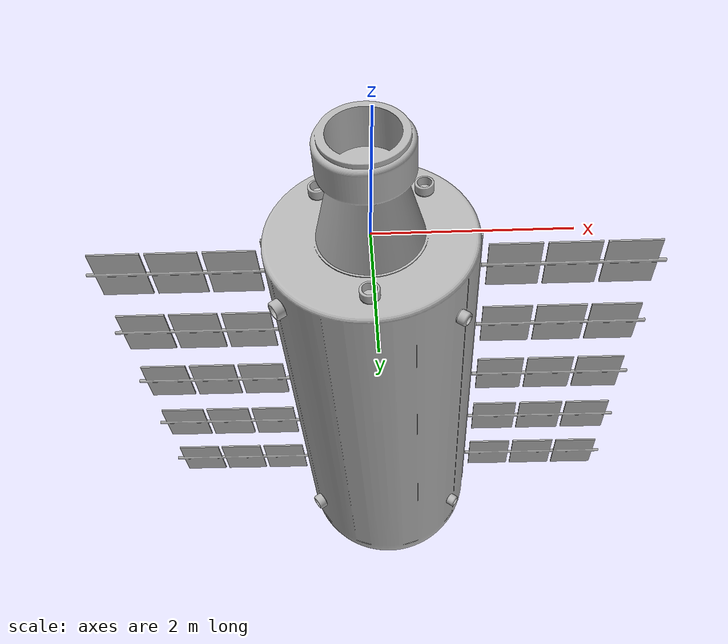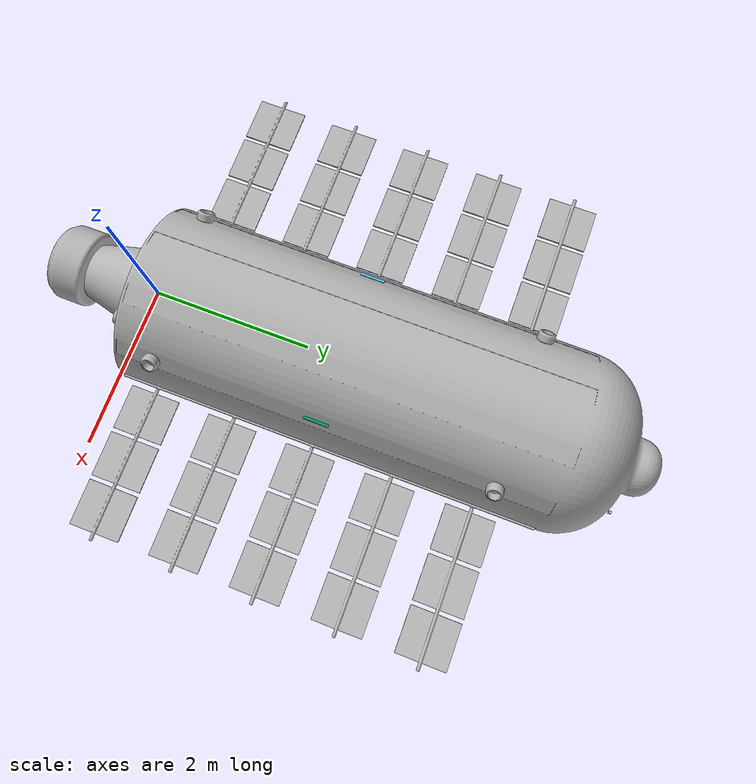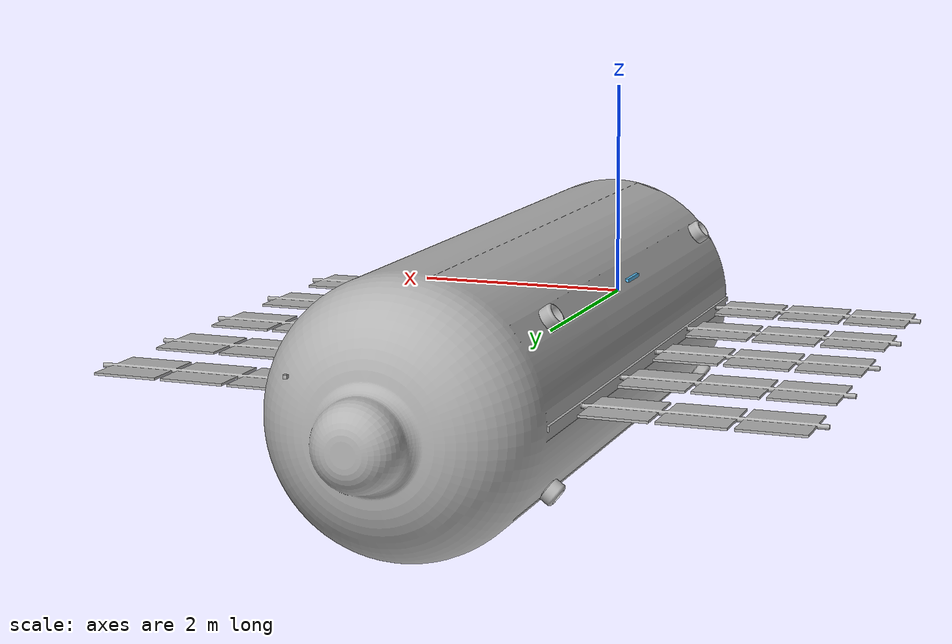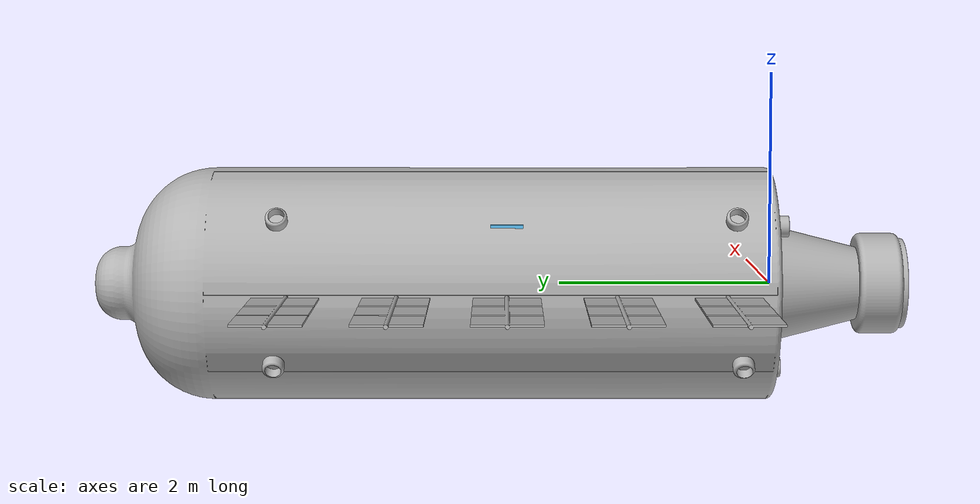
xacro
<?xml version="1.0" ?>
<robot name="ssos_new" xmlns:xacro="http://www.ros.org/wiki/xacro">

<xacro:include filename="$(find ssos_new_description)/urdf/materials.xacro" />
<xacro:include filename="$(find ssos_new_description)/urdf/ssos_new.trans" />
<xacro:include filename="$(find ssos_new_description)/urdf/ssos_new.gazebo" />
<link name="base_link">
  <inertial>
    <origin xyz="1.886367117564357e-05 2.9300904056450165 -3.512754882887134e-05" rpy="0 0 0"/>
    <mass value="59820.904316015636"/>
    <inertia ixx="190022.980799" iyy="35229.544646" izz="190060.931055" ixy="2.422747" iyz="-5.513361" ixz="0.041035"/>
  </inertial>
  <visual>
    <origin xyz="0 0 0" rpy="0 0 0"/>
    <geometry>
      <mesh filename="file://$(find ssos_new_description)/meshes/base_link.stl" scale="0.001 0.001 0.001"/>
    </geometry>
    <material name="silver"/>
  </visual>
  <collision>
    <origin xyz="0 0 0" rpy="0 0 0"/>
    <geometry>
      <mesh filename="file://$(find ssos_new_description)/meshes/base_link.stl" scale="0.001 0.001 0.001"/>
    </geometry>
  </collision>
</link>

<link name="MT_2_1">
  <inertial>
    <origin xyz="-2.841007504805759e-07 -0.0495376300873707 1.1864439974917929e-07" rpy="0 0 0"/>
    <mass value="3.7162511033865258"/>
    <inertia ixx="0.017529" iyy="0.02897" izz="0.017529" ixy="0.0" iyz="-0.0" ixz="-0.0"/>
  </inertial>
  <visual>
    <origin xyz="-0.551703 0.01 -0.598446" rpy="0 0 0"/>
    <geometry>
      <mesh filename="file://$(find ssos_new_description)/meshes/MT_2_1.stl" scale="0.001 0.001 0.001"/>
    </geometry>
    <material name="silver"/>
  </visual>
  <collision>
    <origin xyz="-0.551703 0.01 -0.598446" rpy="0 0 0"/>
    <geometry>
      <mesh filename="file://$(find ssos_new_description)/meshes/MT_2_1.stl" scale="0.001 0.001 0.001"/>
    </geometry>
  </collision>
</link>

<link name="MT_1_1">
  <inertial>
    <origin xyz="-1.3771435936060783e-07 -0.0495376300873707 -4.6078387594405967e-07" rpy="0 0 0"/>
    <mass value="3.7162511033865258"/>
    <inertia ixx="0.017529" iyy="0.02897" izz="0.017529" ixy="-0.0" iyz="0.0" ixz="0.0"/>
  </inertial>
  <visual>
    <origin xyz="0.550421 0.01 -0.594304" rpy="0 0 0"/>
    <geometry>
      <mesh filename="file://$(find ssos_new_description)/meshes/MT_1_1.stl" scale="0.001 0.001 0.001"/>
    </geometry>
    <material name="silver"/>
  </visual>
  <collision>
    <origin xyz="0.550421 0.01 -0.594304" rpy="0 0 0"/>
    <geometry>
      <mesh filename="file://$(find ssos_new_description)/meshes/MT_1_1.stl" scale="0.001 0.001 0.001"/>
    </geometry>
  </collision>
</link>

<link name="MT_3_1">
  <inertial>
    <origin xyz="-1.1808064770261507e-07 -0.049537630087370985 -4.6108205664641133e-07" rpy="0 0 0"/>
    <mass value="3.7162511033865173"/>
    <inertia ixx="0.017529" iyy="0.02897" izz="0.017529" ixy="-0.0" iyz="0.0" ixz="0.0"/>
  </inertial>
  <visual>
    <origin xyz="-0.000773 0.01 0.803127" rpy="0 0 0"/>
    <geometry>
      <mesh filename="file://$(find ssos_new_description)/meshes/MT_3_1.stl" scale="0.001 0.001 0.001"/>
    </geometry>
    <material name="silver"/>
  </visual>
  <collision>
    <origin xyz="-0.000773 0.01 0.803127" rpy="0 0 0"/>
    <geometry>
      <mesh filename="file://$(find ssos_new_description)/meshes/MT_3_1.stl" scale="0.001 0.001 0.001"/>
    </geometry>
  </collision>
</link>

<link name="docking_port_1">
  <inertial>
    <origin xyz="0.0 -0.4851995656397463 7.105427357601002e-17" rpy="0 0 0"/>
    <mass value="5122.6114498737425"/>
    <inertia ixx="926.238737" iyy="624.648368" izz="926.238737" ixy="0.0" iyz="0.0" ixz="0.0"/>
  </inertial>
  <visual>
    <origin xyz="-0.0 0.01 -0.0" rpy="0 0 0"/>
    <geometry>
      <mesh filename="file://$(find ssos_new_description)/meshes/docking_port_1.stl" scale="0.001 0.001 0.001"/>
    </geometry>
    <material name="silver"/>
  </visual>
  <collision>
    <origin xyz="-0.0 0.01 -0.0" rpy="0 0 0"/>
    <geometry>
      <mesh filename="file://$(find ssos_new_description)/meshes/docking_port_1.stl" scale="0.001 0.001 0.001"/>
    </geometry>
  </collision>
</link>

<link name="RTTB_1">
  <inertial>
    <origin xyz="0.03824995618750615 3.4416913763379853e-15 0.027790336313582742" rpy="0 0 0"/>
    <mass value="3.5350193044108953"/>
    <inertia ixx="0.023559" iyy="0.016352" izz="0.020156" ixy="0.0" iyz="0.0" ixz="0.005237"/>
  </inertial>
  <visual>
    <origin xyz="-0.904613 -0.5 -0.626338" rpy="0 0 0"/>
    <geometry>
      <mesh filename="file://$(find ssos_new_description)/meshes/RTTB_1.stl" scale="0.001 0.001 0.001"/>
    </geometry>
    <material name="silver"/>
  </visual>
  <collision>
    <origin xyz="-0.904613 -0.5 -0.626338" rpy="0 0 0"/>
    <geometry>
      <mesh filename="file://$(find ssos_new_description)/meshes/RTTB_1.stl" scale="0.001 0.001 0.001"/>
    </geometry>
  </collision>
</link>

<link name="RTTF_1">
  <inertial>
    <origin xyz="0.03824995618750304 0.0 0.02779033631358163" rpy="0 0 0"/>
    <mass value="3.53501930441091"/>
    <inertia ixx="0.023559" iyy="0.016352" izz="0.020156" ixy="-0.0" iyz="0.0" ixz="0.005237"/>
  </inertial>
  <visual>
    <origin xyz="-0.904613 -4.6 -0.626338" rpy="0 0 0"/>
    <geometry>
      <mesh filename="file://$(find ssos_new_description)/meshes/RTTF_1.stl" scale="0.001 0.001 0.001"/>
    </geometry>
    <material name="silver"/>
  </visual>
  <collision>
    <origin xyz="-0.904613 -4.6 -0.626338" rpy="0 0 0"/>
    <geometry>
      <mesh filename="file://$(find ssos_new_description)/meshes/RTTF_1.stl" scale="0.001 0.001 0.001"/>
    </geometry>
  </collision>
</link>

<link name="RBTF_1">
  <inertial>
    <origin xyz="0.03991016766178146 -0.0005714963848992838 -0.02468915670161853" rpy="0 0 0"/>
    <mass value="4.659361362870616"/>
    <inertia ixx="0.018793" iyy="0.014025" izz="0.016566" ixy="-1e-05" iyz="-1.1e-05" ixz="-0.003391"/>
  </inertial>
  <visual>
    <origin xyz="-0.874052 -4.600327 0.668403" rpy="0 0 0"/>
    <geometry>
      <mesh filename="file://$(find ssos_new_description)/meshes/RBTF_1.stl" scale="0.001 0.001 0.001"/>
    </geometry>
    <material name="silver"/>
  </visual>
  <collision>
    <origin xyz="-0.874052 -4.600327 0.668403" rpy="0 0 0"/>
    <geometry>
      <mesh filename="file://$(find ssos_new_description)/meshes/RBTF_1.stl" scale="0.001 0.001 0.001"/>
    </geometry>
  </collision>
</link>

<link name="RBTB_1">
  <inertial>
    <origin xyz="0.03984184050268691 3.627816314022425e-08 -0.025461070512632022" rpy="0 0 0"/>
    <mass value="7.24763069715076"/>
    <inertia ixx="0.025794" iyy="0.019865" izz="0.023137" ixy="-0.0" iyz="0.0" ixz="-0.004274"/>
  </inertial>
  <visual>
    <origin xyz="-0.873275 -0.5 0.669472" rpy="0 0 0"/>
    <geometry>
      <mesh filename="file://$(find ssos_new_description)/meshes/RBTB_1.stl" scale="0.001 0.001 0.001"/>
    </geometry>
    <material name="silver"/>
  </visual>
  <collision>
    <origin xyz="-0.873275 -0.5 0.669472" rpy="0 0 0"/>
    <geometry>
      <mesh filename="file://$(find ssos_new_description)/meshes/RBTB_1.stl" scale="0.001 0.001 0.001"/>
    </geometry>
  </collision>
</link>

<link name="LTTB_1">
  <inertial>
    <origin xyz="-0.03824969357288299 6.772360450213455e-15 0.027790186032330966" rpy="0 0 0"/>
    <mass value="10.164799098763918"/>
    <inertia ixx="0.067744" iyy="0.047019" izz="0.057959" ixy="-0.0" iyz="0.0" ixz="-0.015057"/>
  </inertial>
  <visual>
    <origin xyz="0.875224 -0.4 -0.666789" rpy="0 0 0"/>
    <geometry>
      <mesh filename="file://$(find ssos_new_description)/meshes/LTTB_1.stl" scale="0.001 0.001 0.001"/>
    </geometry>
    <material name="silver"/>
  </visual>
  <collision>
    <origin xyz="0.875224 -0.4 -0.666789" rpy="0 0 0"/>
    <geometry>
      <mesh filename="file://$(find ssos_new_description)/meshes/LTTB_1.stl" scale="0.001 0.001 0.001"/>
    </geometry>
  </collision>
</link>

<link name="LTTF_1">
  <inertial>
    <origin xyz="-0.042338695723278086 0.0032245412137728025 0.02216428331774034" rpy="0 0 0"/>
    <mass value="10.165044701049645"/>
    <inertia ixx="0.067394" iyy="0.046737" izz="0.057906" ixy="-3.6e-05" iyz="-0.000136" ixz="-0.014957"/>
  </inertial>
  <visual>
    <origin xyz="0.873495 -4.598636 -0.669169" rpy="0 0 0"/>
    <geometry>
      <mesh filename="file://$(find ssos_new_description)/meshes/LTTF_1.stl" scale="0.001 0.001 0.001"/>
    </geometry>
    <material name="silver"/>
  </visual>
  <collision>
    <origin xyz="0.873495 -4.598636 -0.669169" rpy="0 0 0"/>
    <geometry>
      <mesh filename="file://$(find ssos_new_description)/meshes/LTTF_1.stl" scale="0.001 0.001 0.001"/>
    </geometry>
  </collision>
</link>

<link name="LBTB_1">
  <inertial>
    <origin xyz="-0.04313953774063117 0.008517774894352126 -0.021091057455870144" rpy="0 0 0"/>
    <mass value="10.16843748111071"/>
    <inertia ixx="0.065483" iyy="0.045826" izz="0.056489" ixy="-0.000547" iyz="0.001135" ixz="0.014548"/>
  </inertial>
  <visual>
    <origin xyz="0.895806 -0.331656 0.638461" rpy="0 0 0"/>
    <geometry>
      <mesh filename="file://$(find ssos_new_description)/meshes/LBTB_1.stl" scale="0.001 0.001 0.001"/>
    </geometry>
    <material name="silver"/>
  </visual>
  <collision>
    <origin xyz="0.895806 -0.331656 0.638461" rpy="0 0 0"/>
    <geometry>
      <mesh filename="file://$(find ssos_new_description)/meshes/LBTB_1.stl" scale="0.001 0.001 0.001"/>
    </geometry>
  </collision>
</link>

<link name="LBTF_1">
  <inertial>
    <origin xyz="-0.03824959236897019 3.481451216202913e-07 -0.027789808983213926" rpy="0 0 0"/>
    <mass value="10.16479909876385"/>
    <inertia ixx="0.067744" iyy="0.047019" izz="0.057959" ixy="0.0" iyz="-0.0" ixz="0.015057"/>
  </inertial>
  <visual>
    <origin xyz="0.899387 -4.637913 0.633532" rpy="0 0 0"/>
    <geometry>
      <mesh filename="file://$(find ssos_new_description)/meshes/LBTF_1.stl" scale="0.001 0.001 0.001"/>
    </geometry>
    <material name="silver"/>
  </visual>
  <collision>
    <origin xyz="0.899387 -4.637913 0.633532" rpy="0 0 0"/>
    <geometry>
      <mesh filename="file://$(find ssos_new_description)/meshes/LBTF_1.stl" scale="0.001 0.001 0.001"/>
    </geometry>
  </collision>
</link>

<link name="R_panel_1_1">
  <inertial>
    <origin xyz="0.9361275572401446 3.845611862285381e-07 -0.0019851982249817" rpy="0 0 0"/>
    <mass value="167.22718079856097"/>
    <inertia ixx="4.989471" iyy="45.021836" izz="49.997477" ixy="-0.0" iyz="-0.0" ixz="-0.000584"/>
  </inertial>
  <visual>
    <origin xyz="-1.125 -0.500262 -0.002319" rpy="0 0 0"/>
    <geometry>
      <mesh filename="file://$(find ssos_new_description)/meshes/R_panel_1_1.stl" scale="0.001 0.001 0.001"/>
    </geometry>
    <material name="silver"/>
  </visual>
  <collision>
    <origin xyz="-1.125 -0.500262 -0.002319" rpy="0 0 0"/>
    <geometry>
      <mesh filename="file://$(find ssos_new_description)/meshes/R_panel_1_1.stl" scale="0.001 0.001 0.001"/>
    </geometry>
  </collision>
</link>

<link name="R_panel_2_1">
  <inertial>
    <origin xyz="0.9361275572401451 3.845611862285381e-07 -0.001985198224981703" rpy="0 0 0"/>
    <mass value="167.22718079856094"/>
    <inertia ixx="4.989471" iyy="45.021836" izz="49.997477" ixy="-0.0" iyz="0.0" ixz="-0.000584"/>
  </inertial>
  <visual>
    <origin xyz="-1.125 -1.500262 -0.002319" rpy="0 0 0"/>
    <geometry>
      <mesh filename="file://$(find ssos_new_description)/meshes/R_panel_2_1.stl" scale="0.001 0.001 0.001"/>
    </geometry>
    <material name="silver"/>
  </visual>
  <collision>
    <origin xyz="-1.125 -1.500262 -0.002319" rpy="0 0 0"/>
    <geometry>
      <mesh filename="file://$(find ssos_new_description)/meshes/R_panel_2_1.stl" scale="0.001 0.001 0.001"/>
    </geometry>
  </collision>
</link>

<link name="R_panel_3_1">
  <inertial>
    <origin xyz="0.9361275572401451 3.8456118600649347e-07 -0.001985198224981703" rpy="0 0 0"/>
    <mass value="167.22718079856094"/>
    <inertia ixx="4.989471" iyy="45.021836" izz="49.997477" ixy="0.0" iyz="0.0" ixz="-0.000584"/>
  </inertial>
  <visual>
    <origin xyz="-1.125 -2.500262 -0.002319" rpy="0 0 0"/>
    <geometry>
      <mesh filename="file://$(find ssos_new_description)/meshes/R_panel_3_1.stl" scale="0.001 0.001 0.001"/>
    </geometry>
    <material name="silver"/>
  </visual>
  <collision>
    <origin xyz="-1.125 -2.500262 -0.002319" rpy="0 0 0"/>
    <geometry>
      <mesh filename="file://$(find ssos_new_description)/meshes/R_panel_3_1.stl" scale="0.001 0.001 0.001"/>
    </geometry>
  </collision>
</link>

<link name="R_panel_4_1">
  <inertial>
    <origin xyz="0.9361275572401442 3.8456118600649347e-07 -0.001985198224981707" rpy="0 0 0"/>
    <mass value="167.227180798561"/>
    <inertia ixx="4.989471" iyy="45.021836" izz="49.997477" ixy="0.0" iyz="0.0" ixz="-0.000584"/>
  </inertial>
  <visual>
    <origin xyz="-1.125 -3.500262 -0.002319" rpy="0 0 0"/>
    <geometry>
      <mesh filename="file://$(find ssos_new_description)/meshes/R_panel_4_1.stl" scale="0.001 0.001 0.001"/>
    </geometry>
    <material name="silver"/>
  </visual>
  <collision>
    <origin xyz="-1.125 -3.500262 -0.002319" rpy="0 0 0"/>
    <geometry>
      <mesh filename="file://$(find ssos_new_description)/meshes/R_panel_4_1.stl" scale="0.001 0.001 0.001"/>
    </geometry>
  </collision>
</link>

<link name="R_panel_5_1">
  <inertial>
    <origin xyz="0.9361275572401442 3.845611873387611e-07 -0.001985198224981707" rpy="0 0 0"/>
    <mass value="167.227180798561"/>
    <inertia ixx="4.989471" iyy="45.021836" izz="49.997477" ixy="0.0" iyz="0.0" ixz="-0.000584"/>
  </inertial>
  <visual>
    <origin xyz="-1.125 -4.500262 -0.002319" rpy="0 0 0"/>
    <geometry>
      <mesh filename="file://$(find ssos_new_description)/meshes/R_panel_5_1.stl" scale="0.001 0.001 0.001"/>
    </geometry>
    <material name="silver"/>
  </visual>
  <collision>
    <origin xyz="-1.125 -4.500262 -0.002319" rpy="0 0 0"/>
    <geometry>
      <mesh filename="file://$(find ssos_new_description)/meshes/R_panel_5_1.stl" scale="0.001 0.001 0.001"/>
    </geometry>
  </collision>
</link>

<link name="L_panel_1_1">
  <inertial>
    <origin xyz="-0.9361275572401451 3.845611862285381e-07 -0.0019851982249817" rpy="0 0 0"/>
    <mass value="167.22718079856097"/>
    <inertia ixx="4.989471" iyy="45.021836" izz="49.997477" ixy="-0.0" iyz="0.0" ixz="0.000584"/>
  </inertial>
  <visual>
    <origin xyz="1.125 -0.500262 -0.002319" rpy="0 0 0"/>
    <geometry>
      <mesh filename="file://$(find ssos_new_description)/meshes/L_panel_1_1.stl" scale="0.001 0.001 0.001"/>
    </geometry>
    <material name="silver"/>
  </visual>
  <collision>
    <origin xyz="1.125 -0.500262 -0.002319" rpy="0 0 0"/>
    <geometry>
      <mesh filename="file://$(find ssos_new_description)/meshes/L_panel_1_1.stl" scale="0.001 0.001 0.001"/>
    </geometry>
  </collision>
</link>

<link name="L_panel_2_1">
  <inertial>
    <origin xyz="-0.9361275572401451 3.845611862285381e-07 -0.001985198224981703" rpy="0 0 0"/>
    <mass value="167.22718079856094"/>
    <inertia ixx="4.989471" iyy="45.021836" izz="49.997477" ixy="0.0" iyz="0.0" ixz="0.000584"/>
  </inertial>
  <visual>
    <origin xyz="1.125 -1.500262 -0.002319" rpy="0 0 0"/>
    <geometry>
      <mesh filename="file://$(find ssos_new_description)/meshes/L_panel_2_1.stl" scale="0.001 0.001 0.001"/>
    </geometry>
    <material name="silver"/>
  </visual>
  <collision>
    <origin xyz="1.125 -1.500262 -0.002319" rpy="0 0 0"/>
    <geometry>
      <mesh filename="file://$(find ssos_new_description)/meshes/L_panel_2_1.stl" scale="0.001 0.001 0.001"/>
    </geometry>
  </collision>
</link>

<link name="L_panel_3_1">
  <inertial>
    <origin xyz="-0.9361275572401451 3.8456118600649347e-07 -0.001985198224981703" rpy="0 0 0"/>
    <mass value="167.22718079856094"/>
    <inertia ixx="4.989471" iyy="45.021836" izz="49.997477" ixy="-0.0" iyz="0.0" ixz="0.000584"/>
  </inertial>
  <visual>
    <origin xyz="1.125 -2.500262 -0.002319" rpy="0 0 0"/>
    <geometry>
      <mesh filename="file://$(find ssos_new_description)/meshes/L_panel_3_1.stl" scale="0.001 0.001 0.001"/>
    </geometry>
    <material name="silver"/>
  </visual>
  <collision>
    <origin xyz="1.125 -2.500262 -0.002319" rpy="0 0 0"/>
    <geometry>
      <mesh filename="file://$(find ssos_new_description)/meshes/L_panel_3_1.stl" scale="0.001 0.001 0.001"/>
    </geometry>
  </collision>
</link>

<link name="L_panel_4_1">
  <inertial>
    <origin xyz="-0.9361275572401451 3.8456118600649347e-07 -0.001985198224981707" rpy="0 0 0"/>
    <mass value="167.227180798561"/>
    <inertia ixx="4.989471" iyy="45.021836" izz="49.997477" ixy="-0.0" iyz="0.0" ixz="0.000584"/>
  </inertial>
  <visual>
    <origin xyz="1.125 -3.500262 -0.002319" rpy="0 0 0"/>
    <geometry>
      <mesh filename="file://$(find ssos_new_description)/meshes/L_panel_4_1.stl" scale="0.001 0.001 0.001"/>
    </geometry>
    <material name="silver"/>
  </visual>
  <collision>
    <origin xyz="1.125 -3.500262 -0.002319" rpy="0 0 0"/>
    <geometry>
      <mesh filename="file://$(find ssos_new_description)/meshes/L_panel_4_1.stl" scale="0.001 0.001 0.001"/>
    </geometry>
  </collision>
</link>

<link name="L_panel_5_1">
  <inertial>
    <origin xyz="-0.9361275572401451 3.845611873387611e-07 -0.001985198224981707" rpy="0 0 0"/>
    <mass value="167.227180798561"/>
    <inertia ixx="4.989471" iyy="45.021836" izz="49.997477" ixy="-0.0" iyz="0.0" ixz="0.000584"/>
  </inertial>
  <visual>
    <origin xyz="1.125 -4.500262 -0.002319" rpy="0 0 0"/>
    <geometry>
      <mesh filename="file://$(find ssos_new_description)/meshes/L_panel_5_1.stl" scale="0.001 0.001 0.001"/>
    </geometry>
    <material name="silver"/>
  </visual>
  <collision>
    <origin xyz="1.125 -4.500262 -0.002319" rpy="0 0 0"/>
    <geometry>
      <mesh filename="file://$(find ssos_new_description)/meshes/L_panel_5_1.stl" scale="0.001 0.001 0.001"/>
    </geometry>
  </collision>
</link>

<joint name="bl_th" type="continuous">
  <origin xyz="0.551703 -0.01 0.598446" rpy="0 0 0"/>
  <parent link="base_link"/>
  <child link="MT_2_1"/>
  <axis xyz="0.0 1.0 0.0"/>
</joint>

<joint name="br_th" type="continuous">
  <origin xyz="-0.550421 -0.01 0.594304" rpy="0 0 0"/>
  <parent link="base_link"/>
  <child link="MT_1_1"/>
  <axis xyz="0.0 1.0 0.0"/>
</joint>

<joint name="bb_th" type="continuous">
  <origin xyz="0.000773 -0.01 -0.803127" rpy="0 0 0"/>
  <parent link="base_link"/>
  <child link="MT_3_1"/>
  <axis xyz="0.0 1.0 0.0"/>
</joint>

<joint name="docking" type="continuous">
  <origin xyz="0.0 -0.01 0.0" rpy="0 0 0"/>
  <parent link="base_link"/>
  <child link="docking_port_1"/>
  <axis xyz="0.0 1.0 0.0"/>
</joint>

<joint name="lth_tb" type="continuous">
  <origin xyz="0.904613 0.5 0.626338" rpy="0 0 0"/>
  <parent link="base_link"/>
  <child link="RTTB_1"/>
  <axis xyz="0.809017 0.0 0.587785"/>
</joint>

<joint name="lth_tf" type="continuous">
  <origin xyz="0.904613 4.6 0.626338" rpy="0 0 0"/>
  <parent link="base_link"/>
  <child link="RTTF_1"/>
  <axis xyz="0.809017 0.0 0.587785"/>
</joint>

<joint name="lth_bf" type="continuous">
  <origin xyz="0.874052 4.600327 -0.668403" rpy="0 0 0"/>
  <parent link="base_link"/>
  <child link="RBTF_1"/>
  <axis xyz="0.809017 0.0 -0.587785"/>
</joint>

<joint name="lth_bb" type="continuous">
  <origin xyz="0.873275 0.5 -0.669472" rpy="0 0 0"/>
  <parent link="base_link"/>
  <child link="RBTB_1"/>
  <axis xyz="0.809017 0.0 -0.587785"/>
</joint>

<joint name="rth_tb" type="continuous">
  <origin xyz="-0.875224 0.4 0.666789" rpy="0 0 0"/>
  <parent link="base_link"/>
  <child link="LTTB_1"/>
  <axis xyz="-0.809017 0.0 0.587785"/>
</joint>

<joint name="rth_tf" type="continuous">
  <origin xyz="-0.873495 4.598636 0.669169" rpy="0 0 0"/>
  <parent link="base_link"/>
  <child link="LTTF_1"/>
  <axis xyz="-0.809017 0.0 0.587785"/>
</joint>

<joint name="rth_bb" type="continuous">
  <origin xyz="-0.895806 0.331656 -0.638461" rpy="0 0 0"/>
  <parent link="base_link"/>
  <child link="LBTB_1"/>
  <axis xyz="-0.809017 0.0 -0.587785"/>
</joint>

<joint name="rth_bf" type="continuous">
  <origin xyz="-0.899387 4.637913 -0.633532" rpy="0 0 0"/>
  <parent link="base_link"/>
  <child link="LBTF_1"/>
  <axis xyz="-0.809017 0.0 -0.587785"/>
</joint>

<joint name="lsa_1" type="continuous">
  <origin xyz="1.125 0.500262 0.002319" rpy="0 0 0"/>
  <parent link="base_link"/>
  <child link="R_panel_1_1"/>
  <axis xyz="1.0 0.0 0.0"/>
</joint>

<joint name="lsa_2" type="continuous">
  <origin xyz="1.125 1.500262 0.002319" rpy="0 0 0"/>
  <parent link="base_link"/>
  <child link="R_panel_2_1"/>
  <axis xyz="1.0 0.0 0.0"/>
</joint>

<joint name="lsa_3" type="continuous">
  <origin xyz="1.125 2.500262 0.002319" rpy="0 0 0"/>
  <parent link="base_link"/>
  <child link="R_panel_3_1"/>
  <axis xyz="1.0 0.0 0.0"/>
</joint>

<joint name="lsa_4" type="continuous">
  <origin xyz="1.125 3.500262 0.002319" rpy="0 0 0"/>
  <parent link="base_link"/>
  <child link="R_panel_4_1"/>
  <axis xyz="1.0 0.0 0.0"/>
</joint>

<joint name="lsa_5" type="continuous">
  <origin xyz="1.125 4.500262 0.002319" rpy="0 0 0"/>
  <parent link="base_link"/>
  <child link="R_panel_5_1"/>
  <axis xyz="1.0 0.0 0.0"/>
</joint>

<joint name="rsa_1" type="continuous">
  <origin xyz="-1.125 0.500262 0.002319" rpy="0 0 0"/>
  <parent link="base_link"/>
  <child link="L_panel_1_1"/>
  <axis xyz="-1.0 0.0 0.0"/>
</joint>

<joint name="rsa_2" type="continuous">
  <origin xyz="-1.125 1.500262 0.002319" rpy="0 0 0"/>
  <parent link="base_link"/>
  <child link="L_panel_2_1"/>
  <axis xyz="-1.0 0.0 0.0"/>
</joint>

<joint name="rsa_3" type="continuous">
  <origin xyz="-1.125 2.500262 0.002319" rpy="0 0 0"/>
  <parent link="base_link"/>
  <child link="L_panel_3_1"/>
  <axis xyz="-1.0 0.0 0.0"/>
</joint>

<joint name="rsa_4" type="continuous">
  <origin xyz="-1.125 3.500262 0.002319" rpy="0 0 0"/>
  <parent link="base_link"/>
  <child link="L_panel_4_1"/>
  <axis xyz="-1.0 0.0 0.0"/>
</joint>

<joint name="rsa_5" type="continuous">
  <origin xyz="-1.125 4.500262 0.002319" rpy="0 0 0"/>
  <parent link="base_link"/>
  <child link="L_panel_5_1"/>
  <axis xyz="-1.0 0.0 0.0"/>
</joint>

<!-- Additional cameras, IMU, and GPS -->
<!-- 1. Camera in front of space station -->
<joint type="fixed" name="front_camera_joint">
  <origin xyz="0.673495 5.9 0.4" rpy="0 0 1.57"/>
  <parent link="base_link"/>
  <child link="front_camera_link"/>
</joint>
<link name="front_camera_link">
  <inertial>
    <mass value="0.1"/>
    <origin xyz="0 0 0" rpy="0 0 0"/>
    <inertia ixx="1e-6" iyy="1e-6" izz="1e-6" ixy="0" iyz="0" ixz="0"/>
  </inertial>
  <visual>
    <geometry><box size="0.03 0.03 0.03"/></geometry>
  </visual>
  <collision>
    <geometry><box size="0.03 0.03 0.03"/></geometry>
  </collision>
</link>

<!-- 2. Camera near MT_1_1 -->
<joint type="fixed" name="mt1_camera_joint">
  <origin xyz="0.0 -0.01 0.6" rpy="0 0 -1.57"/>
  <parent link="base_link"/>
  <child link="mt1_camera_link"/>
</joint>
<link name="mt1_camera_link">
  <inertial>
    <mass value="0.1"/>
    <origin xyz="0 0 0" rpy="0 0 0"/>
    <inertia ixx="1e-6" iyy="1e-6" izz="1e-6" ixy="0" iyz="0" ixz="0"/>
  </inertial>
  <visual>
    <geometry><box size="0.03 0.3 0.03"/></geometry>
  </visual>
  <collision>
    <geometry><box size="0.03 0.3 0.03"/></geometry>
  </collision>
</link>

<!-- 3. Camera right of 3rd solar array joint -->
<joint type="fixed" name="solar_r3_camera_joint">
  <origin xyz="-0.904613 2.5 0.626338" rpy="0 0 3.14 "/>
  <parent link="base_link"/>
  <child link="solar_r3_camera_link"/>
</joint>
<link name="solar_r3_camera_link">
  <inertial>
    <mass value="0.1"/>
    <origin xyz="0 0 0" rpy="0 0 0"/>
    <inertia ixx="1e-6" iyy="1e-6" izz="1e-6" ixy="0" iyz="0" ixz="0"/>
  </inertial>
  <visual>
    <geometry><box size="0.03 0.3 0.03"/></geometry>
  </visual>
  <collision>
    <geometry><box size="0.03 0.3 0.03"/></geometry>
  </collision>
</link>

<!-- 4. Camera left of 3rd solar array joint -->
<joint type="fixed" name="solar_l3_camera_joint">
  <origin xyz="0.904613 2.5 0.626338" rpy="0 0 0"/>
  <parent link="base_link"/>
  <child link="solar_l3_camera_link"/>
</joint>
<link name="solar_l3_camera_link">
  <inertial>
    <mass value="0.1"/>
    <origin xyz="0 0 0" rpy="0 0 0"/>
    <inertia ixx="1e-6" iyy="1e-6" izz="1e-6" ixy="0" iyz="0" ixz="0"/>
  </inertial>
  <visual>
    <geometry><box size="0.03 0.3 0.03"/></geometry>
  </visual>
  <collision>
    <geometry><box size="0.03 0.3 0.03"/></geometry>
  </collision>
</link>

<!-- IMU sensor -->
<joint name="imu_joint" type="fixed">
  <origin xyz="0 0 0" rpy="0 0 0"/>
  <parent link="base_link"/>
  <child link="imu_link"/>
</joint>
<link name="imu_link"/>

<!-- GPS sensor -->
<joint name="navsat_joint" type="fixed">
  <origin xyz="0 0 0" rpy="0 0 0"/>
  <parent link="base_link"/>
  <child link="navsat_link"/>
</joint>
<link name="navsat_link"/>

</robot>

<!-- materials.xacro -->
<robot name="ssos_new" xmlns:xacro="http://www.ros.org/wiki/xacro" >

<material name="black">
    <color rgba="0.0 0.0 0.0 1.0"/>
  </material>

  <material name="white">
    <color rgba="1.0 1.0 1.0 1.0"/>
  </material>

  <material name="red">
    <color rgba="0.8 0.0 0.0 1.0"/>
  </material>

  <material name="blue">
    <color rgba="0.0 0.0 0.8 1.0"/>
  </material>

  <material name="green">
    <color rgba="0.0 0.8 0.0 1.0"/>
  </material>

  <material name="grey">
    <color rgba="0.5 0.5 0.5 1.0"/>
  </material>

  <material name="orange">
    <color rgba="${255/255} ${108/255} ${10/255} 1.0"/>
  </material>

  <material name="brown">
    <color rgba="${222/255} ${207/255} ${195/255} 1.0"/>
  </material>

  <material name="silver">
    <color rgba="0.700 0.700 0.700 1.000"/>
  </material>

</robot>

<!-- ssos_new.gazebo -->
<robot name="ssos_new" xmlns:xacro="http://www.ros.org/wiki/xacro" >

  <xacro:property name="body_color" value="Gazebo/White" />
  <xacro:property name="solar_panel" value="Gazebo/Blue" />
  <xacro:property name="thruster_panel" value="Gazebo/Black" />

  <gazebo reference="base_link">
  <material>${body_color}</material>
  <mu1>100</mu1>
  <mu2>100</mu2>
  <self_collide>true</self_collide>
  <gravity>true</gravity>
</gazebo>

<gazebo reference="MT_2_1">
  <material>${thruster_panel}</material>
  <mu1>100</mu1>
  <mu2>100</mu2>
  <self_collide>true</self_collide>
</gazebo>

<gazebo reference="MT_1_1">
  <material>${thruster_panel}</material>
  <mu1>100</mu1>
  <mu2>100</mu2>
  <self_collide>true</self_collide>
</gazebo>

<gazebo reference="MT_3_1">
  <material>${thruster_panel}</material>
  <mu1>100</mu1>
  <mu2>100</mu2>
  <self_collide>true</self_collide>
</gazebo>

<gazebo reference="docking_port_1">
  <material>${thruster_panel}</material>
  <mu1>100</mu1>
  <mu2>100</mu2>
  <self_collide>true</self_collide>
</gazebo>

<gazebo reference="RTTB_1">
  <material>${thruster_panel}</material>
  <mu1>100</mu1>
  <mu2>100</mu2>
  <self_collide>true</self_collide>
</gazebo>

<gazebo reference="RTTF_1">
  <material>${thruster_panel}</material>
  <mu1>100</mu1>
  <mu2>100</mu2>
  <self_collide>true</self_collide>
</gazebo>

<gazebo reference="RBTF_1">
  <material>${thruster_panel}</material>
  <mu1>100</mu1>
  <mu2>100</mu2>
  <self_collide>true</self_collide>
</gazebo>

<gazebo reference="RBTB_1">
  <material>${thruster_panel}</material>
  <mu1>100</mu1>
  <mu2>100</mu2>
  <self_collide>true</self_collide>
</gazebo>

<gazebo reference="LTTB_1">
  <material>${thruster_panel}</material>
  <mu1>100</mu1>
  <mu2>100</mu2>
  <self_collide>true</self_collide>
</gazebo>

<gazebo reference="LTTF_1">
  <material>${thruster_panel}</material>
  <mu1>100</mu1>
  <mu2>100</mu2>
  <self_collide>true</self_collide>
</gazebo>

<gazebo reference="LBTB_1">
  <material>${thruster_panel}</material>
  <mu1>100</mu1>
  <mu2>100</mu2>
  <self_collide>true</self_collide>
</gazebo>

<gazebo reference="LBTF_1">
  <material>${thruster_panel}</material>
  <mu1>100</mu1>
  <mu2>100</mu2>
  <self_collide>true</self_collide>
</gazebo>

<gazebo reference="R_panel_1_1">
  <material>${solar_panel}</material>
  <mu1>100</mu1>
  <mu2>100</mu2>
  <self_collide>true</self_collide>
</gazebo>

<gazebo reference="R_panel_2_1">
  <material>${solar_panel}</material>
  <mu1>100</mu1>
  <mu2>100</mu2>
  <self_collide>true</self_collide>
</gazebo>

<gazebo reference="R_panel_3_1">
  <material>${solar_panel}</material>
  <mu1>100</mu1>
  <mu2>100</mu2>
  <self_collide>true</self_collide>
</gazebo>

<gazebo reference="R_panel_4_1">
  <material>${solar_panel}</material>
  <mu1>100</mu1>
  <mu2>100</mu2>
  <self_collide>true</self_collide>
</gazebo>

<gazebo reference="R_panel_5_1">
  <material>${solar_panel}</material>
  <mu1>100</mu1>
  <mu2>100</mu2>
  <self_collide>true</self_collide>
</gazebo>

<gazebo reference="L_panel_1_1">
  <material>${solar_panel}</material>
  <mu1>100</mu1>
  <mu2>100</mu2>
  <self_collide>true</self_collide>
</gazebo>

<gazebo reference="L_panel_2_1">
  <material>${solar_panel}</material>
  <mu1>100</mu1>
  <mu2>100</mu2>
  <self_collide>true</self_collide>
</gazebo>

<gazebo reference="L_panel_3_1">
  <material>${solar_panel}</material>
  <mu1>100</mu1>
  <mu2>100</mu2>
  <self_collide>true</self_collide>
</gazebo>

<gazebo reference="L_panel_4_1">
  <material>${solar_panel}</material>
  <mu1>100</mu1>
  <mu2>100</mu2>
  <self_collide>true</self_collide>
</gazebo>

<gazebo reference="L_panel_5_1">
  <material>${solar_panel}</material>
  <mu1>100</mu1>
  <mu2>100</mu2>
  <self_collide>true</self_collide>
</gazebo>

  <gazebo>
    <plugin filename="gz_ros2_control-system" name="gz_ros2_control::GazeboSimROS2ControlPlugin">
      <parameters>$(find ssos_new_description)/config/controller.yaml</parameters>

        <!-- Optional: specify controller manager node name -->
      <controller_manager_prefix_node_name>controller_manager</controller_manager_prefix_node_name>

    </plugin>
  </gazebo>

  <ros2_control name="GazeboSystem" type="system">
    <hardware>
      <plugin>gz_ros2_control/GazeboSimSystem</plugin>

    </hardware>
    <!-- Left Solar Array Joints -->
    <joint name="lsa_1">
      <command_interface name="position"/>
      <state_interface name="position"/>
      <state_interface name="velocity"/>
    </joint>
    <joint name="lsa_2">
      <command_interface name="position"/>
      <state_interface name="position"/>
      <state_interface name="velocity"/>
    </joint>
    <joint name="lsa_3">
      <command_interface name="position"/>
      <state_interface name="position"/>
      <state_interface name="velocity"/>
    </joint>
    <joint name="lsa_4">
      <command_interface name="position"/>
      <state_interface name="position"/>
      <state_interface name="velocity"/>
    </joint>
    <joint name="lsa_5">
      <command_interface name="position"/>
      <state_interface name="position"/>
      <state_interface name="velocity"/>
    </joint>

    <!-- Right Solar Array Joints -->
    <joint name="rsa_1">
      <command_interface name="position"/>
      <state_interface name="position"/>
      <state_interface name="velocity"/>
    </joint>
    <joint name="rsa_2">
      <command_interface name="position"/>
      <state_interface name="position"/>
      <state_interface name="velocity"/>
    </joint>
    <joint name="rsa_3">
      <command_interface name="position"/>
      <state_interface name="position"/>
      <state_interface name="velocity"/>
    </joint>
    <joint name="rsa_4">
      <command_interface name="position"/>
      <state_interface name="position"/>
      <state_interface name="velocity"/>
    </joint>
    <joint name="rsa_5">
      <command_interface name="position"/>
      <state_interface name="position"/>
      <state_interface name="velocity"/>
    </joint>
  </ros2_control>

  <gazebo>
    <plugin filename="gz-sim-thruster-system" name="gz::sim::systems::Thruster">
      <joint_name>bl_th</joint_name>
      <thrust_coefficient>0.004</thrust_coefficient>
      <fluid_density>1000</fluid_density>
      <propeller_diameter>0.2</propeller_diameter>
      <max_thrust_cmd>300</max_thrust_cmd>
      <min_thrust_cmd>0</min_thrust_cmd>
    </plugin>
  </gazebo>

  <gazebo>
    <plugin filename="gz-sim-thruster-system" name="gz::sim::systems::Thruster">
      <joint_name>br_th</joint_name>
      <thrust_coefficient>0.004</thrust_coefficient>
      <fluid_density>1000</fluid_density>
      <propeller_diameter>0.2</propeller_diameter>
      <max_thrust_cmd>300</max_thrust_cmd>
      <min_thrust_cmd>0</min_thrust_cmd>
    </plugin>
  </gazebo>

  <gazebo>
    <plugin filename="gz-sim-thruster-system" name="gz::sim::systems::Thruster">
      <joint_name>bb_th</joint_name>
      <thrust_coefficient>0.004</thrust_coefficient>
      <fluid_density>1000</fluid_density>
      <propeller_diameter>0.2</propeller_diameter>
      <max_thrust_cmd>300</max_thrust_cmd>
      <min_thrust_cmd>0</min_thrust_cmd>
    </plugin>
  </gazebo>

  <gazebo>
    <plugin filename="gz-sim-thruster-system" name="gz::sim::systems::Thruster">
      <joint_name>lth_tb</joint_name>
      <thrust_coefficient>0.004</thrust_coefficient>
      <fluid_density>1000</fluid_density>
      <propeller_diameter>0.2</propeller_diameter>
      <max_thrust_cmd>300</max_thrust_cmd>
      <min_thrust_cmd>0</min_thrust_cmd>
    </plugin>
  </gazebo>

  <gazebo>
    <plugin filename="gz-sim-thruster-system" name="gz::sim::systems::Thruster">
      <joint_name>lth_tf</joint_name>
      <thrust_coefficient>0.004</thrust_coefficient>
      <fluid_density>1000</fluid_density>
      <propeller_diameter>0.2</propeller_diameter>
      <max_thrust_cmd>300</max_thrust_cmd>
      <min_thrust_cmd>0</min_thrust_cmd>
    </plugin>
  </gazebo>

  <gazebo>
    <plugin filename="gz-sim-thruster-system" name="gz::sim::systems::Thruster">
      <joint_name>lth_bf</joint_name>
      <thrust_coefficient>0.004</thrust_coefficient>
      <fluid_density>1000</fluid_density>
      <propeller_diameter>0.2</propeller_diameter>
      <max_thrust_cmd>300</max_thrust_cmd>
      <min_thrust_cmd>0</min_thrust_cmd>
    </plugin>
  </gazebo>

  <gazebo>
    <plugin filename="gz-sim-thruster-system" name="gz::sim::systems::Thruster">
      <joint_name>lth_bb</joint_name>
      <thrust_coefficient>0.004</thrust_coefficient>
      <fluid_density>1000</fluid_density>
      <propeller_diameter>0.2</propeller_diameter>
      <max_thrust_cmd>300</max_thrust_cmd>
      <min_thrust_cmd>0</min_thrust_cmd>
    </plugin>
  </gazebo>

  <gazebo>
    <plugin filename="gz-sim-thruster-system" name="gz::sim::systems::Thruster">
      <joint_name>rth_tb</joint_name>
      <thrust_coefficient>0.004</thrust_coefficient>
      <fluid_density>1000</fluid_density>
      <propeller_diameter>0.2</propeller_diameter>
      <max_thrust_cmd>300</max_thrust_cmd>
      <min_thrust_cmd>0</min_thrust_cmd>
    </plugin>
  </gazebo>

  <gazebo>
    <plugin filename="gz-sim-thruster-system" name="gz::sim::systems::Thruster">
      <joint_name>rth_tf</joint_name>
      <thrust_coefficient>0.004</thrust_coefficient>
      <fluid_density>1000</fluid_density>
      <propeller_diameter>0.2</propeller_diameter>
      <max_thrust_cmd>300</max_thrust_cmd>
      <min_thrust_cmd>0</min_thrust_cmd>
    </plugin>
  </gazebo>

  <gazebo>
    <plugin filename="gz-sim-thruster-system" name="gz::sim::systems::Thruster">
      <joint_name>rth_bb</joint_name>
      <thrust_coefficient>0.004</thrust_coefficient>
      <fluid_density>1000</fluid_density>
      <propeller_diameter>0.2</propeller_diameter>
      <max_thrust_cmd>300</max_thrust_cmd>
      <min_thrust_cmd>0</min_thrust_cmd>
    </plugin>
  </gazebo>

  <gazebo>
    <plugin filename="gz-sim-thruster-system" name="gz::sim::systems::Thruster">
      <joint_name>rth_bf</joint_name>
      <thrust_coefficient>0.004</thrust_coefficient>
      <fluid_density>1000</fluid_density>
      <propeller_diameter>0.2</propeller_diameter>
      <max_thrust_cmd>300</max_thrust_cmd>
      <min_thrust_cmd>0</min_thrust_cmd>
    </plugin>
  </gazebo>

  <!-- Additional cameras, IMU, and GPS -->

  <gazebo reference="front_camera_link">
    <sensor name="camera_front" type="camera">
      <camera>
        <horizontal_fov>1.3962634</horizontal_fov>
        <image>
          <width>640</width>
          <height>480</height>
          <format>R8G8B8</format>
        </image>
        <clip>
          <near>0.1</near>
          <far>15</far>
        </clip>
        <noise>
          <type>gaussian</type>
          <mean>0.0</mean>
          <stddev>0.007</stddev>
        </noise>
        <optical_frame_id>front_camera_link_optical</optical_frame_id>
        <camera_info_topic>front_camera/camera_info</camera_info_topic>
      </camera>
      <always_on>1</always_on>
      <update_rate>20</update_rate>
      <visualize>true</visualize>
      <topic>front_camera/image</topic>
    </sensor>
  </gazebo>

  <gazebo reference="mt1_camera_link">
    <sensor name="camera_mt1" type="camera">
      <camera>
        <horizontal_fov>1.3962634</horizontal_fov>
        <image>
          <width>640</width>
          <height>480</height>
          <format>R8G8B8</format>
        </image>
        <clip>
          <near>0.1</near>
          <far>15</far>
        </clip>
        <noise>
          <type>gaussian</type>
          <mean>0.0</mean>
          <stddev>0.007</stddev>
        </noise>
        <optical_frame_id>mt1_camera_link_optical</optical_frame_id>
        <camera_info_topic>mt1_camera/camera_info</camera_info_topic>
      </camera>
      <always_on>1</always_on>
      <update_rate>20</update_rate>
      <visualize>true</visualize>
      <topic>mt1_camera/image</topic>
    </sensor>
  </gazebo>

  <gazebo reference="solar_r3_camera_link">
    <sensor name="camera_solar_r3" type="camera">
      <camera>
        <horizontal_fov>1.3962634</horizontal_fov>
        <image>
          <width>640</width>
          <height>480</height>
          <format>R8G8B8</format>
        </image>
        <clip>
          <near>0.1</near>
          <far>15</far>
        </clip>
        <noise>
          <type>gaussian</type>
          <mean>0.0</mean>
          <stddev>0.007</stddev>
        </noise>
        <optical_frame_id>solar_r3_camera_link_optical</optical_frame_id>
        <camera_info_topic>solar_r3_camera/camera_info</camera_info_topic>
      </camera>
      <always_on>1</always_on>
      <update_rate>20</update_rate>
      <visualize>true</visualize>
      <topic>solar_r3_camera/image</topic>
    </sensor>
  </gazebo>

  <gazebo reference="solar_l3_camera_link">
    <sensor name="camera_solar_l3" type="camera">
      <camera>
        <horizontal_fov>1.3962634</horizontal_fov>
        <image>
          <width>640</width>
          <height>480</height>
          <format>R8G8B8</format>
        </image>
        <clip>
          <near>0.1</near>
          <far>15</far>
        </clip>
        <noise>
          <type>gaussian</type>
          <mean>0.0</mean>
          <stddev>0.007</stddev>
        </noise>
        <optical_frame_id>solar_l3_camera_link_optical</optical_frame_id>
        <camera_info_topic>solar_l3_camera/camera_info</camera_info_topic>
      </camera>
      <always_on>1</always_on>
      <update_rate>20</update_rate>
      <visualize>true</visualize>
      <topic>solar_l3_camera/image</topic>
    </sensor>
  </gazebo>

  <gazebo reference="imu_link">
    <sensor name="imu" type="imu">
      <always_on>1</always_on>
      <update_rate>50</update_rate>
      <visualize>true</visualize>
      <topic>imu</topic>
      <enable_metrics>true</enable_metrics>
      <gz_frame_id>imu_link</gz_frame_id>
    </sensor>
  </gazebo>

  <gazebo reference="navsat_link">
    <sensor name="navsat" type="navsat">
      <always_on>1</always_on>
      <update_rate>1</update_rate>
      <topic>navsat</topic>
      <gz_frame_id>navsat_link</gz_frame_id>
    </sensor>
  </gazebo>

</robot>
